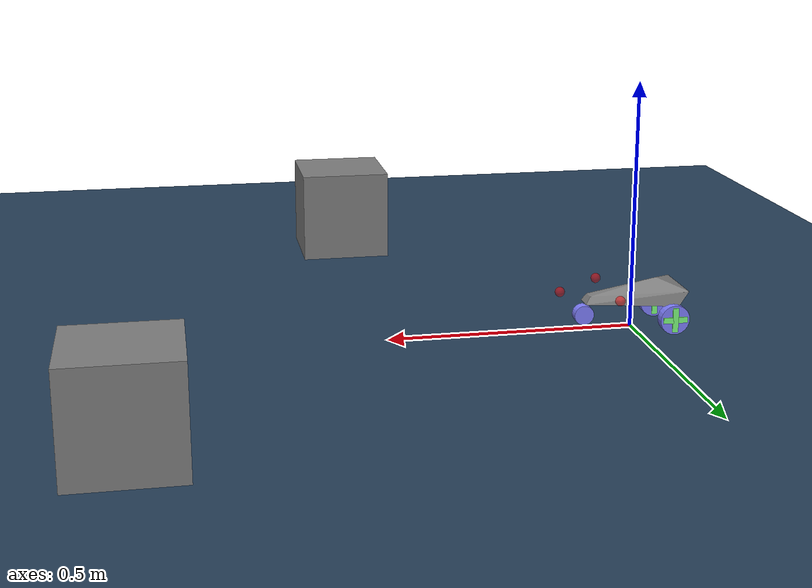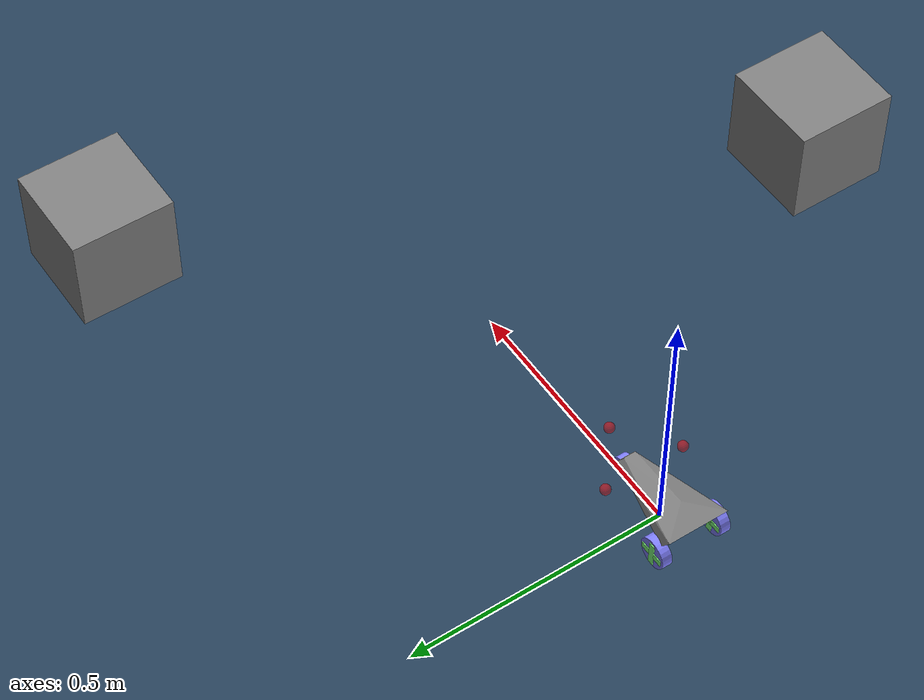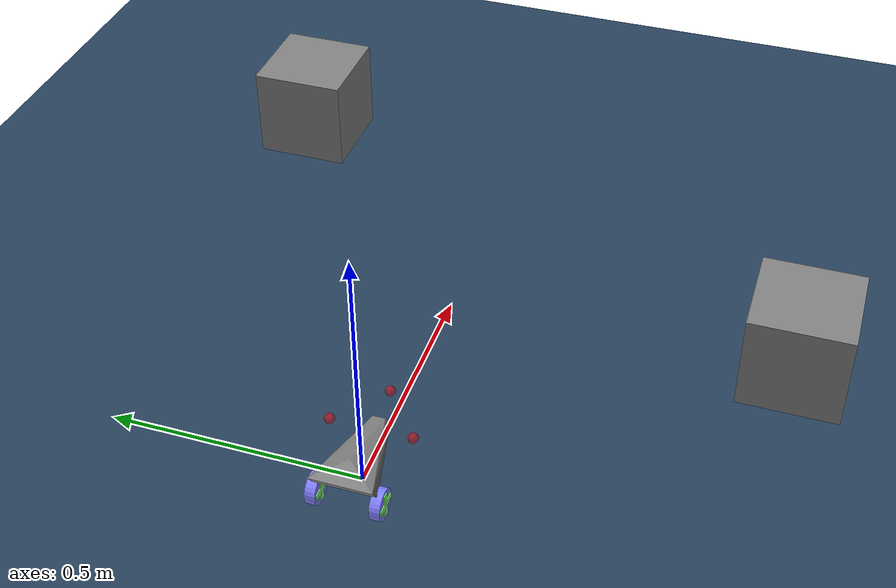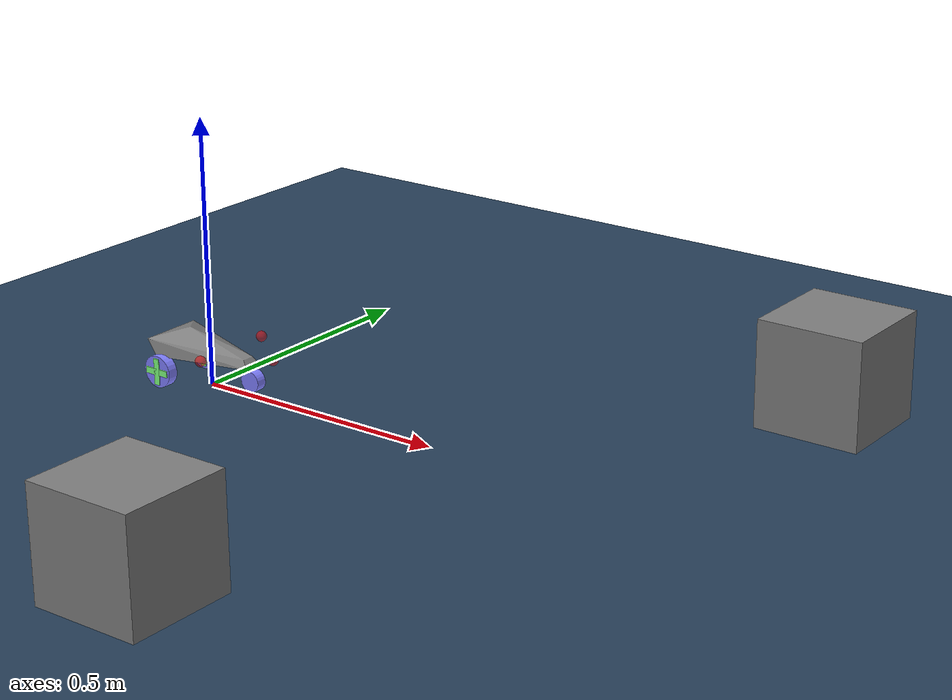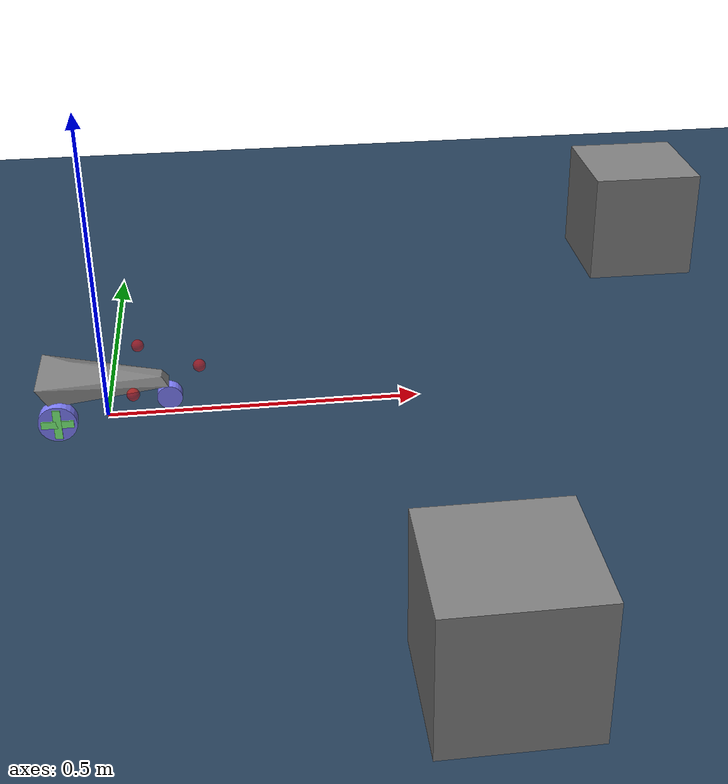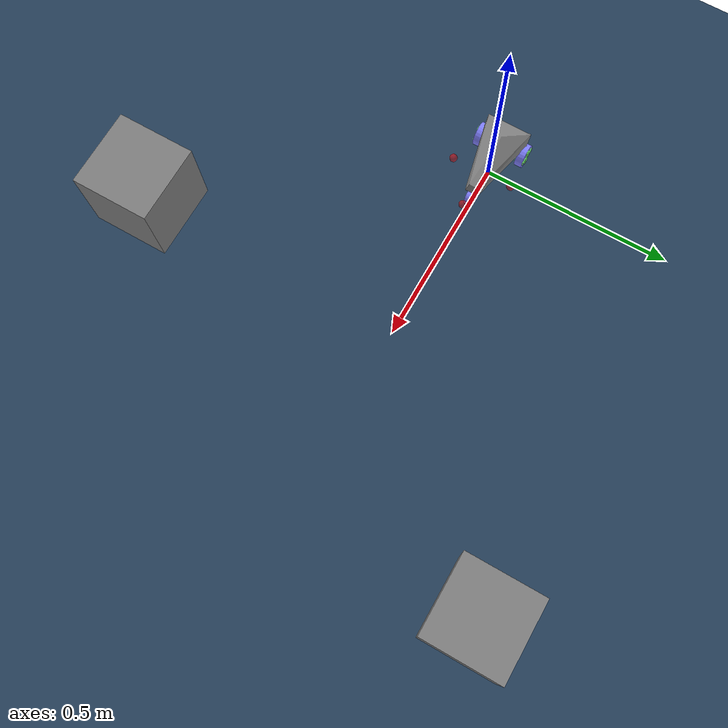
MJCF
<mujoco>
  <compiler autolimits="true"/>

  <asset>
    <texture name="grid" type="2d" builtin="checker" width="512" height="512" rgb1=".1 .2 .3" rgb2=".2 .3 .4"/>
    <material name="grid" texture="grid" texrepeat="1 1" texuniform="true" reflectance=".2"/>
    <mesh name="chasis" scale=".01 .006 .0015"
      vertex=" 9   2   0
              -10  10  10
               9  -2   0
               10  3  -10
               10 -3  -10
              -8   10 -10
              -10 -10  10
              -8  -10 -10
              -5   0   20"/>

    <!-- Текстуры для камеры -->
    <texture name="camera_tex" type="2d" builtin="gradient" width="320" height="240"/>
    <material name="camera_mat" texture="camera_tex"/>
  </asset>

  <default>
    <joint damping=".03" actuatorfrcrange="-0.5 0.5"/>
    <default class="wheel">
      <geom type="cylinder" size=".03 .01" rgba=".5 .5 1 1"/>
    </default>
    <default class="decor">
      <site type="box" rgba=".5 1 .5 1"/>
    </default>
    <default class="sensor">
      <site type="sphere" size="0.01" rgba="1 0 0 0.5"/>
    </default>
  </default>

  <worldbody>
    <geom type="plane" size="3 3 .01" material="grid"/>

    <!-- Камеры должны быть в worldbody -->
    <camera name="front_cam" mode="fixed" pos="0.5 0 0.3" xyaxes="1 0 0 0 1 1" fovy="60"/>
    <camera name="global_view" pos="0 0 2" xyaxes="1 0 0 0 1 0" fovy="45"/>

    <!-- Препятствия -->
    <geom name="obstacle1" type="box" pos="1.0 0.5 0.1" size="0.1 0.1 0.1"/>
    <geom name="obstacle2" type="box" pos="0.5 -0.7 0.1" size="0.1 0.1 0.1"/>

    <body name="car" pos="0 0 .03">
      <freejoint/>
      <light name="top light" pos="0 0 2" mode="trackcom" diffuse=".4 .4 .4"/>

      <!-- Тело робота -->
      <body pos="0 0 0.04">
        <geom name="chasis" type="mesh" mesh="chasis"/>

        <!-- Камера на роботе с улучшенными параметрами -->
        <camera name="robot_cam" pos="0.1 0 0.1" xyaxes="1 0 0 0 1 1" fovy="70">
          <resolution width="320" height="240"/>
        </camera>
      </body>

      <!-- Датчики -->
      <site name="front_sensor" class="sensor" pos="0.15 0 0.05"/>
      <site name="right_sensor" class="sensor" pos="0.05 -0.08 0.05"/>
      <site name="left_sensor" class="sensor" pos="0.05 0.08 0.05"/>

      <!-- Переднее колесо с рулевым управлением -->
      <body name="front wheel" pos=".1 0 0" zaxis="0 1 0">
        <geom type="cylinder" size=".02 .01" rgba=".5 .5 1 1"/>
        <joint name="steer" type="hinge" range="-30 30" axis="0 1 0"/>
        <joint name="steer2" type="hinge"/>
        <light name="front light" pos=".1 0 .02" dir="2 0 -1" diffuse="1 1 1"/>
      </body>

      <!-- Задние колеса -->
      <body name="left wheel" pos="-.07 .06 0" zaxis="0 1 0">
        <joint name="left"/>
        <geom class="wheel"/>
        <site class="decor" size=".006 .025 .012"/>
        <site class="decor" size=".025 .006 .012"/>
      </body>

      <body name="right wheel" pos="-.07 -.06 0" zaxis="0 1 0">
        <joint name="right"/>
        <geom class="wheel"/>
        <site class="decor" size=".006 .025 .012"/>
        <site class="decor" size=".025 .006 .012"/>
      </body>
    </body>
  </worldbody>

  <tendon>
    <fixed name="forward">
      <joint joint="left" coef=".5"/>
      <joint joint="right" coef=".5"/>
    </fixed>
    <fixed name="turn">
      <joint joint="steer" coef="-.5"/>
    </fixed>
  </tendon>

  <actuator>
    <motor name="4x4" tendon="forward" ctrlrange="-1 1"/>
    <motor name="turn" tendon="turn" ctrlrange="-1 1"/>
  </actuator>

  <sensor>
    <rangefinder name="range_front" site="front_sensor" cutoff="1.0"/>
    <rangefinder name="range_right" site="right_sensor" cutoff="0.5"/>
    <rangefinder name="range_left" site="left_sensor" cutoff="0.5"/>
    <jointactuatorfrc name="right" joint="right"/>
    <jointactuatorfrc name="left" joint="left"/>

    <!-- Улучшенный датчик камеры -->
    <camera name="camera_sensor" camera="robot_cam">
      <resolution width="320" height="240"/>
      <framerate>30</framerate>
    </camera>
  </sensor>
</mujoco>
